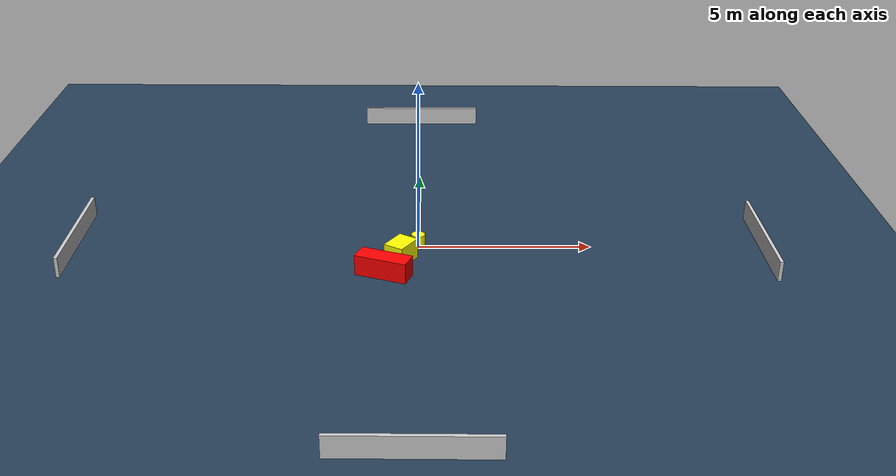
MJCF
<?xml version="1.0" ?>
<mujoco model="generated_environment">
  <option timestep="0.01" integrator="RK4" cone="elliptic"/>
  <default>
    <geom density="1"/>
  </default>
  <asset>
    <texture builtin="gradient" height="3072" name="skybox" rgb1="0.3 0.5 0.7" rgb2="0 0 0" type="skybox" width="512"/>
    <texture builtin="checker" height="300" name="groundplane" rgb1="0.2 0.3 0.4" rgb2="0.1 0.2 0.3" type="2d" width="300"/>
    <material name="groundplane" reflectance="0.2" texrepeat="5 5" texture="groundplane"/>
  </asset>
  <worldbody>
    <light dir="0 0 -1" directional="true" pos="0 0 1.5"/>
    <geom condim="3" friction="0.5 0.005 0.001" material="groundplane" name="floor" pos="0 0 0" size="0 0 0.05" type="plane"/>
    <body name="walls">
      <geom name="wall_1" condim="4" pos="-10.0 0.0 0.3" rgba="0.800000011920929 0.800000011920929 0.800000011920929 1.0" size="0.05 2.0 0.3" type="box"/>
      <geom name="wall_2" condim="4" pos="10.0 0.0 0.3" rgba="0.800000011920929 0.800000011920929 0.800000011920929 1.0" size="0.05 2.0 0.3" type="box"/>
      <geom name="wall_3" condim="4" pos="0.0 -10.0 0.3" rgba="0.800000011920929 0.800000011920929 0.800000011920929 1.0" size="2.0 0.05 0.3" type="box"/>
      <geom name="wall_4" condim="4" pos="0.0 10.0 0.3" rgba="0.800000011920929 0.800000011920929 0.800000011920929 1.0" size="2.0 0.05 0.3" type="box"/>
    </body>
    <body name="robot">
      <joint name="joint_x" type="slide" pos="0 0 0" axis="1 0 0"/>
      <joint name="joint_y" type="slide" pos="0 0 0" axis="0 1 0"/>
      <geom name="robot" type="cylinder" pos="0.0 0.0 0.2" size="0.2 0.2 0.0" mass="5.0" friction="1.0 0.005 0.0001" condim="4" rgba="1.0 1.0 0.0 1.0"/>
    </body>
    <body name="obstacle_1_movable">
      <geom name="obstacle_1_movable" condim="4" pos="-0.4823035856449364 -0.8741376114867185 0.3" euler="0 0 327.39388631647813" friction="0.0 0.005 0.001" rgba="1.0 1.0 0.0 1.0" size="0.2998759366020177 0.40402504242138826 0.3" type="box" mass="0.1"/>
      <joint type="free"/>
    </body>
    <body name="obstacle_2_static">
      <geom name="obstacle_2_static" condim="4" pos="-0.9430116569346765 -1.750545350663403 0.3" euler="0 0 69.12332167699536" friction="0.0 0.005 0.001" rgba="1.0 0.0 0.0 1.0" size="0.2868533212197883 0.7628740524839996 0.3" type="box"/>
    </body>
  </worldbody>
  <actuator>
    <motor name="actuator_x" joint="joint_x" gear="1" ctrlrange="-1 1"/>
    <motor name="actuator_y" joint="joint_y" gear="1" ctrlrange="-1 1"/>
  </actuator>
</mujoco>
